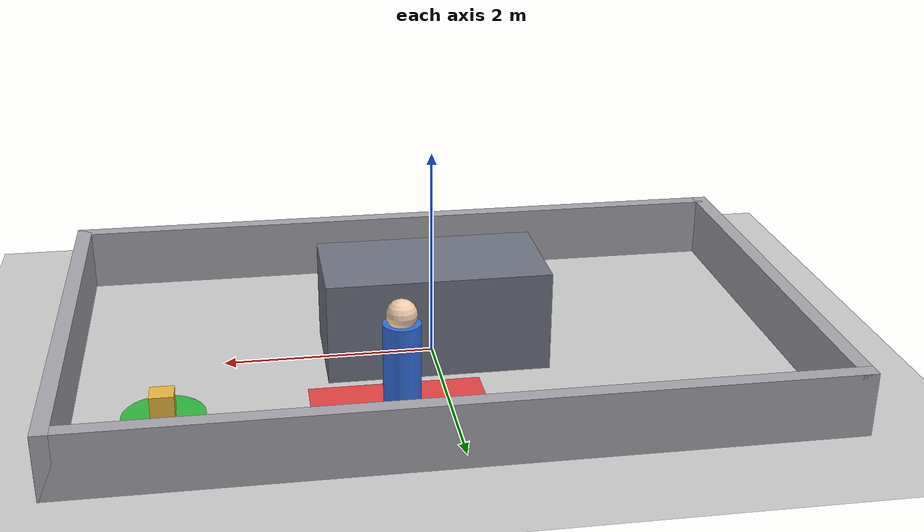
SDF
<?xml version="1.0"?>
<sdf version="1.6">
  <world name="default">

    <include>
      <uri>model://ground_plane</uri>
    </include>

    <include>
      <uri>model://sun</uri>
    </include>

    <scene>
      <shadows>false</shadows>
      <ambient>0.76 0.76 0.76 1.0</ambient>
      <background>0.95 0.95 0.94 1.0</background>
    </scene>

    <gui fullscreen='0'>
      <camera name='user_camera'>
        <pose frame=''>0.20 0.05 11.8 0 1.52 0</pose>
        <view_controller>orbit</view_controller>
        <projection_type>perspective</projection_type>
      </camera>
    </gui>

    <physics type="ode">
      <real_time_update_rate>0</real_time_update_rate>
      <max_step_size>0.001</max_step_size>
      <real_time_factor>0</real_time_factor>
      <ode>
        <solver>
          <type>quick</type>
          <iters>150</iters>
          <precon_iters>0</precon_iters>
          <sor>1.400000</sor>
          <use_dynamic_moi_rescaling>1</use_dynamic_moi_rescaling>
        </solver>
        <constraints>
          <cfm>0.00001</cfm>
          <erp>0.2</erp>
          <contact_max_correcting_vel>2000.000000</contact_max_correcting_vel>
          <contact_surface_layer>0.01000</contact_surface_layer>
        </constraints>
      </ode>
    </physics>

    <model name='warehouse_easy_layout'>
      <static>true</static>

      <link name='top_wall'>
        <collision name='top_wall_collision'>
          <pose>0 0 0.3 0 0 0</pose>
          <geometry>
            <box>
              <size>7.0 0.15 0.6</size>
            </box>
          </geometry>
        </collision>
        <visual name='top_wall_visual'>
          <pose>0 0 0.3 0 0 0</pose>
          <geometry>
            <box>
              <size>7.0 0.15 0.6</size>
            </box>
          </geometry>
          <material>
            <ambient>0.65 0.65 0.68 1.0</ambient>
            <diffuse>0.65 0.65 0.68 1.0</diffuse>
          </material>
        </visual>
        <pose>0 2.15 0 0 0 0</pose>
      </link>

      <link name='bottom_wall'>
        <collision name='bottom_wall_collision'>
          <pose>0 0 0.3 0 0 0</pose>
          <geometry>
            <box>
              <size>7.0 0.15 0.6</size>
            </box>
          </geometry>
        </collision>
        <visual name='bottom_wall_visual'>
          <pose>0 0 0.3 0 0 0</pose>
          <geometry>
            <box>
              <size>7.0 0.15 0.6</size>
            </box>
          </geometry>
          <material>
            <ambient>0.65 0.65 0.68 1.0</ambient>
            <diffuse>0.65 0.65 0.68 1.0</diffuse>
          </material>
        </visual>
        <pose>0 -2.15 0 0 0 0</pose>
      </link>

      <link name='left_wall'>
        <collision name='left_wall_collision'>
          <pose>0 0 0.3 0 0 0</pose>
          <geometry>
            <box>
              <size>4.45 0.15 0.6</size>
            </box>
          </geometry>
        </collision>
        <visual name='left_wall_visual'>
          <pose>0 0 0.3 0 0 0</pose>
          <geometry>
            <box>
              <size>4.45 0.15 0.6</size>
            </box>
          </geometry>
          <material>
            <ambient>0.65 0.65 0.68 1.0</ambient>
            <diffuse>0.65 0.65 0.68 1.0</diffuse>
          </material>
        </visual>
        <pose>-3.425 0 0 0 0 1.5708</pose>
      </link>

      <link name='right_wall'>
        <collision name='right_wall_collision'>
          <pose>0 0 0.3 0 0 0</pose>
          <geometry>
            <box>
              <size>4.45 0.15 0.6</size>
            </box>
          </geometry>
        </collision>
        <visual name='right_wall_visual'>
          <pose>0 0 0.3 0 0 0</pose>
          <geometry>
            <box>
              <size>4.45 0.15 0.6</size>
            </box>
          </geometry>
          <material>
            <ambient>0.65 0.65 0.68 1.0</ambient>
            <diffuse>0.65 0.65 0.68 1.0</diffuse>
          </material>
        </visual>
        <pose>3.425 0 0 0 0 1.5708</pose>
      </link>

      <link name='rack_main'>
        <collision name='rack_main_collision'>
          <pose>0 0 0.48 0 0 0</pose>
          <geometry>
            <box>
              <size>2.10 1.10 0.96</size>
            </box>
          </geometry>
        </collision>
        <visual name='rack_main_visual'>
          <pose>0 0 0.48 0 0 0</pose>
          <geometry>
            <box>
              <size>2.10 1.10 0.96</size>
            </box>
          </geometry>
          <material>
            <ambient>0.44 0.46 0.52 1.0</ambient>
            <diffuse>0.44 0.46 0.52 1.0</diffuse>
          </material>
        </visual>
        <pose>0.00 0.00 0 0 0 0</pose>
      </link>
    </model>

    <model name='pickup_marker'>
      <static>true</static>
      <pose>2.55 0.95 0 0 0 0</pose>
      <link name='marker'>
        <visual name='pad_visual'>
          <pose>0 0 0.003 0 0 0</pose>
          <geometry>
            <cylinder>
              <radius>0.38</radius>
              <length>0.006</length>
            </cylinder>
          </geometry>
          <material>
            <ambient>0.18 0.72 0.24 1.0</ambient>
            <diffuse>0.18 0.72 0.24 1.0</diffuse>
          </material>
        </visual>
        <visual name='crate_visual'>
          <pose>0 0 0.12 0 0 0</pose>
          <geometry>
            <box>
              <size>0.22 0.22 0.24</size>
            </box>
          </geometry>
          <material>
            <ambient>0.92 0.72 0.24 0.95</ambient>
            <diffuse>0.92 0.72 0.24 0.95</diffuse>
          </material>
        </visual>
      </link>
    </model>

    <model name='human_upper_aisle'>
      <static>true</static>
      <pose>0.45 1.25 0 0 0 0</pose>
      <link name='body'>
        <collision name='body_collision'>
          <pose>0 0 0.45 0 0 0</pose>
          <geometry>
            <cylinder>
              <radius>0.17</radius>
              <length>0.90</length>
            </cylinder>
          </geometry>
        </collision>
        <visual name='body_visual'>
          <pose>0 0 0.45 0 0 0</pose>
          <geometry>
            <cylinder>
              <radius>0.17</radius>
              <length>0.90</length>
            </cylinder>
          </geometry>
          <material>
            <ambient>0.20 0.44 0.88 1.0</ambient>
            <diffuse>0.20 0.44 0.88 1.0</diffuse>
          </material>
        </visual>
        <visual name='head_visual'>
          <pose>0 0 0.98 0 0 0</pose>
          <geometry>
            <sphere>
              <radius>0.14</radius>
            </sphere>
          </geometry>
          <material>
            <ambient>0.97 0.82 0.68 1.0</ambient>
            <diffuse>0.97 0.82 0.68 1.0</diffuse>
          </material>
        </visual>
      </link>
    </model>

    <model name='human_upper_zone'>
      <static>true</static>
      <pose>0.45 1.25 0 0 0 0</pose>
      <link name='zone'>
        <visual name='zone_visual'>
          <pose>0 0 0.003 0 0 0</pose>
          <geometry>
            <box>
              <size>1.60 1.20 0.006</size>
            </box>
          </geometry>
          <transparency>0.28</transparency>
          <material>
            <ambient>1.0 0.10 0.10 1.0</ambient>
            <diffuse>1.0 0.10 0.10 1.0</diffuse>
          </material>
        </visual>
      </link>
    </model>

  </world>
</sdf>
